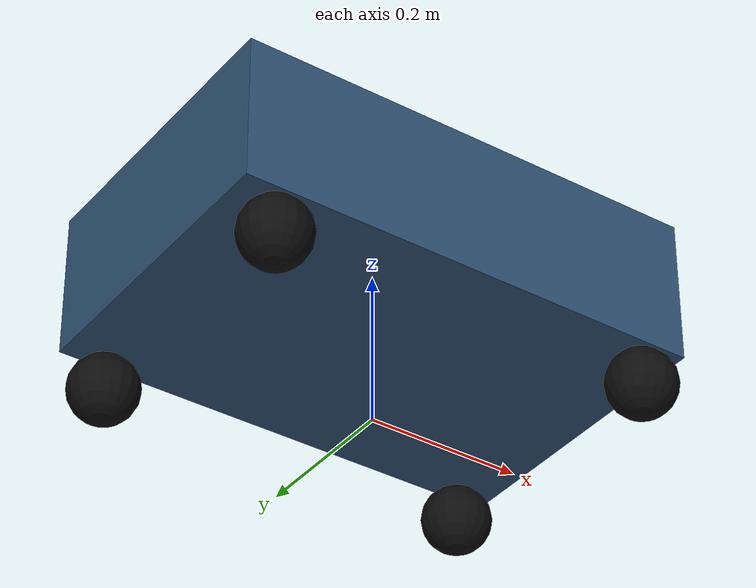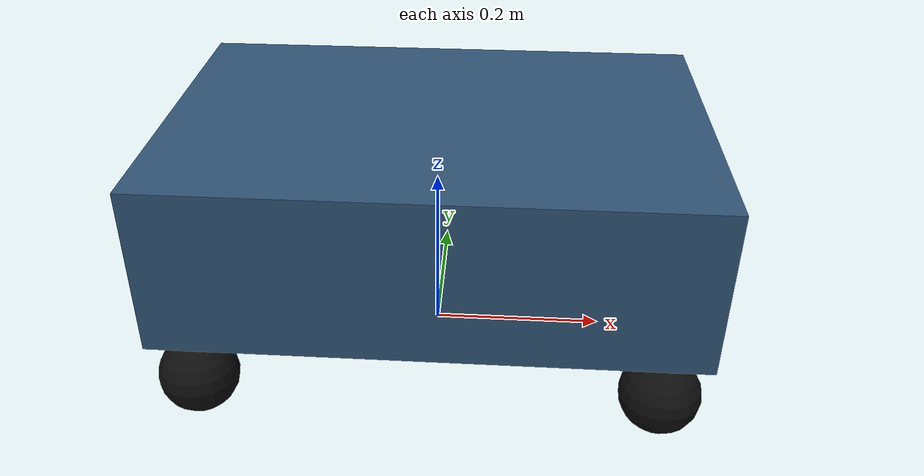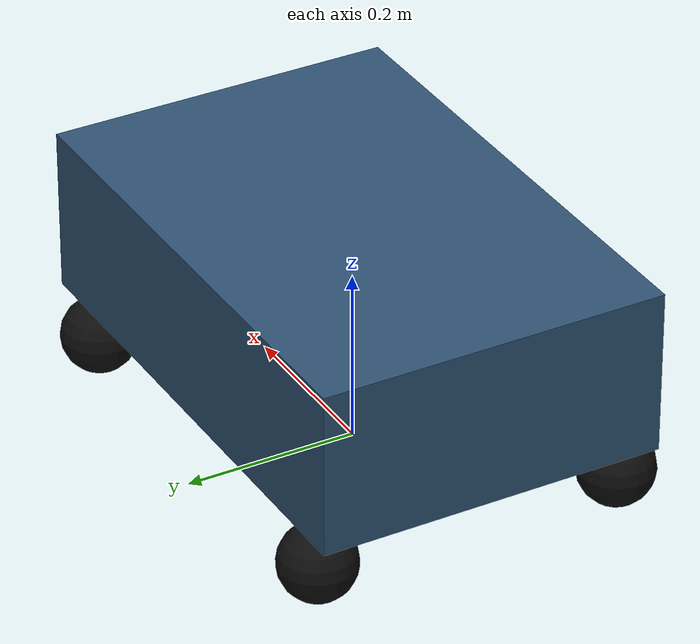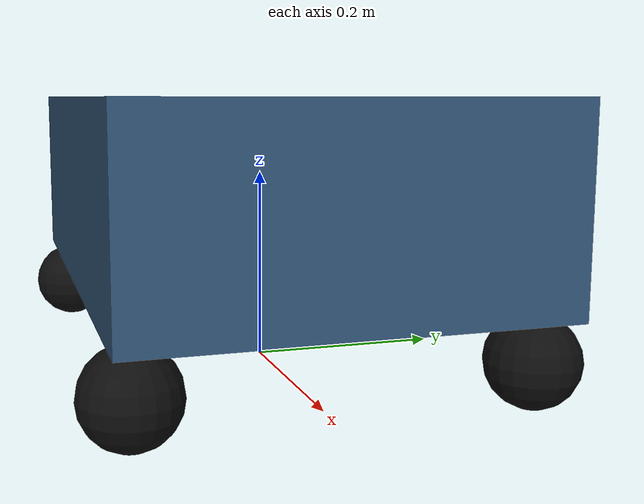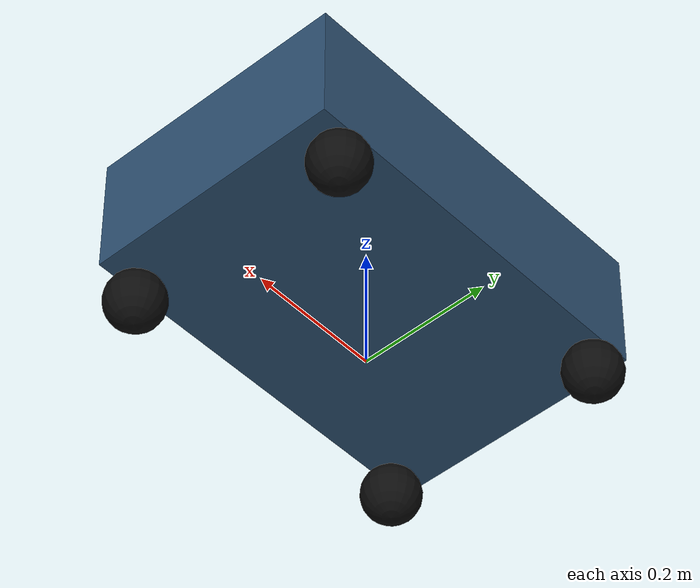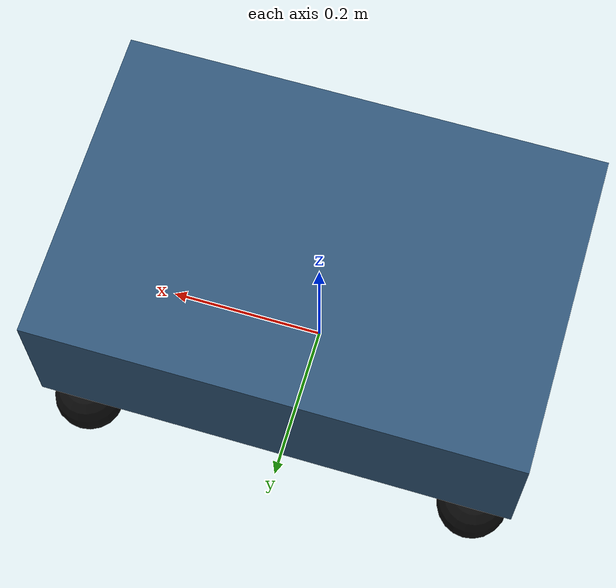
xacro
<?xml version="1.0"?>
<robot xmlns:xacro="http://www.ros.org/wiki/xacro">

  <!-- scaled down from bcr_bot proportions -->
  <xacro:property name="chassis_length"       value="0.60"/>
  <xacro:property name="chassis_width"        value="0.40"/>
  <xacro:property name="chassis_height"       value="0.19"/>
  <xacro:property name="chassis_mass"         value="25.0"/>
  <xacro:property name="traction_wheel_radius" value="0.10"/>
  <xacro:property name="trolley_wheel_radius"  value="0.044"/>
  <xacro:property name="trolley_track_width"   value="0.36"/>
  <xacro:property name="eps"                   value="0.002"/>
  <xacro:property name="castor_mass"           value="0.1"/>

  <material name="dark_grey">
    <color rgba="0.18 0.32 0.45 1.0"/>
  </material>
  <material name="orange">
    <color rgba="1.0 0.4 0.0 1.0"/>
  </material>
  <material name="silver">
    <color rgba="0.7 0.7 0.7 1.0"/>
  </material>
  <material name="black">
    <color rgba="0.05 0.05 0.05 1.0"/>
  </material>

  <link name="base_footprint"/>
  <link name="base_link"/>

  <!-- z = chassis_height/2 + 2*trolley_wheel_radius + eps = 0.095 + 0.088 + 0.002 = 0.185 -->
  <joint name="base_footprint_joint" type="fixed">
    <parent link="base_footprint"/>
    <child link="base_link"/>
    <origin xyz="0 0 0.185" rpy="0 0 0"/>
  </joint>

  <link name="chassis_link">
    <visual>
      <origin xyz="0 0 0" rpy="0 0 0"/>
      <geometry>
        <box size="${chassis_length} ${chassis_width} ${chassis_height}"/>
      </geometry>
      <material name="dark_grey"/>
    </visual>
    <collision>
      <origin xyz="0 0 0" rpy="0 0 0"/>
      <geometry>
        <box size="${chassis_length} ${chassis_width} ${chassis_height}"/>
      </geometry>
    </collision>
    <xacro:box_inertia m="${chassis_mass}"
                       x="${chassis_length}"
                       y="${chassis_width}"
                       z="${chassis_height}"/>
  </link>

  <joint name="chassis_joint" type="fixed">
    <parent link="base_link"/>
    <child link="chassis_link"/>
    <origin xyz="0 0 0" rpy="0 0 0"/>
  </joint>

  <gazebo reference="chassis_link">
    <material>Gazebo/Blue</material>
  </gazebo>

  <!-- ═══════════════════════════════════
       CASTOR (TROLLEY) WHEEL MACRO
       exact bcr_bot formula:
       z = -(trolley_wheel_radius + chassis_height/2)
  ═══════════════════════════════════ -->
  <xacro:macro name="castor_wheel" params="name x y">
    <link name="${name}_link">
      <visual>
        <geometry><sphere radius="${trolley_wheel_radius}"/></geometry>
        <material name="black"/>
      </visual>
      <collision>
        <geometry><sphere radius="${trolley_wheel_radius}"/></geometry>
      </collision>
      <xacro:sphere_inertia m="${castor_mass}" r="${trolley_wheel_radius}"/>
    </link>

    <joint name="${name}_joint" type="fixed">
      <parent link="chassis_link"/>
      <child link="${name}_link"/>
      <origin xyz="${x} ${y} ${-(trolley_wheel_radius + chassis_height/2)}" rpy="0 0 0"/>
    </joint>

    <gazebo reference="${name}_link">
      <mu1>0.0</mu1>
      <mu2>0.0</mu2>
      <kp>1000000.0</kp>
      <kd>100.0</kd>
      <material>Gazebo/Black</material>
    </gazebo>
  </xacro:macro>

  <!-- front and rear castors -->
  <xacro:castor_wheel name="front_left_castor"  x=" ${chassis_length/2 - 0.05}"  y=" ${trolley_track_width/2}"/>
  <xacro:castor_wheel name="front_right_castor" x=" ${chassis_length/2 - 0.05}"  y="-${trolley_track_width/2}"/>
  <xacro:castor_wheel name="rear_left_castor"   x="-${chassis_length/2 - 0.05}"  y=" ${trolley_track_width/2}"/>
  <xacro:castor_wheel name="rear_right_castor"  x="-${chassis_length/2 - 0.05}"  y="-${trolley_track_width/2}"/>

</robot>
